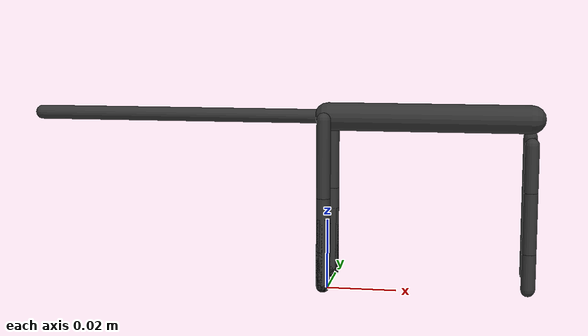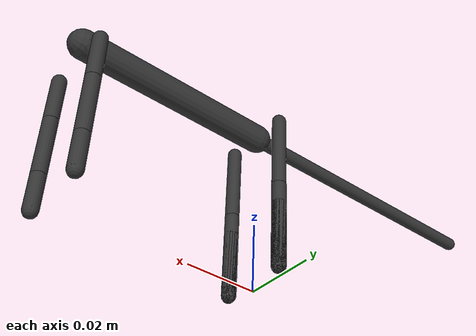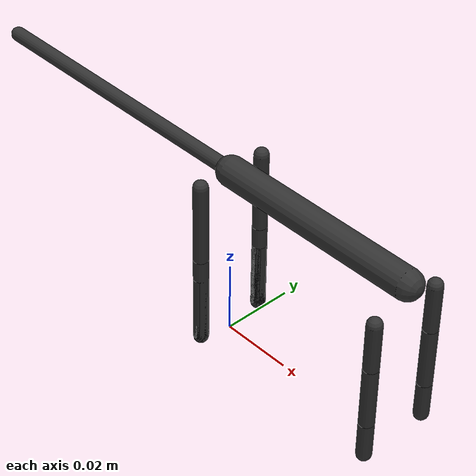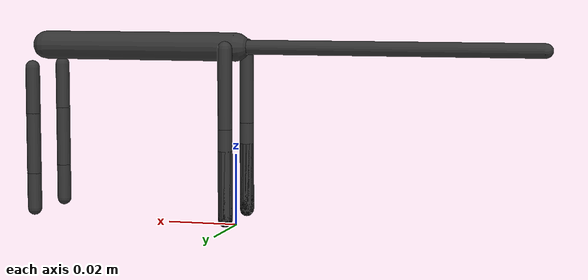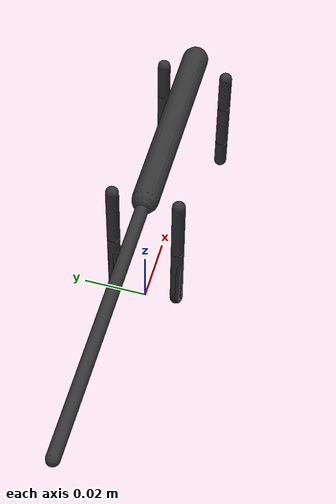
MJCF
<mujoco model="simple_mouse">
    <compiler angle="degree" inertiafromgeom="true"
    coordinate="local"
        />
    <option gravity="0 0 -9.81e-3" timestep="0.00125" iterations="100" />

    <custom>
      <numeric data="2000" name="constraint_stiffness"/>
      <numeric data="1000" name="constraint_limit_stiffness"/>
      <numeric data="0" name="constraint_ang_damping"/>
      <numeric data="0" name="constraint_vel_damping"/>
      <numeric data="0.5" name="joint_scale_pos"/>
      <numeric data="30" name="matrix_inv_iterations"/>
      <numeric data="0.2" name="joint_scale_ang"/>
      <numeric data="0.0" name="ang_damping"/>
      <numeric data="0." name="spring_mass_scale"/>
      <numeric data="0." name="spring_inertia_scale"/>
      <numeric data="15" name="solver_maxls"/>
      <numeric data="1" name="baumgarte_erp"/>
    </custom>

    <default>
        <joint armature="0.00001" damping="0.000001" limited="false"
          margin="10"
          solreflimit="0.2 1"
          solimplimit="0.0 0.8 0.1 0.5 2"
            />
      <geom contype="0" conaffinity="1" condim="3"
          density="0.0"
          friction="0 0.00 0"
          solref="0.2 1"
          solimp="0.0 0.8 10 0.5 2"
          rgba="0.2 0.2 0.2 1.0"/>
         <!-- d0 dw w m p-->
      <motor ctrllimited="true" ctrlrange="-1 1"/>
    </default>

    <size nstack="3000"/>

    <worldbody>
        <!-- Backbone -->
        <body name="mouse" pos="0 0 0.05">
            <geom name="spine" type="capsule" fromto="0 0 0 0.057 0 0" size="0.004" mass="0.005"/>
            <geom name="tail" type="capsule" fromto="0.0 0 0 -0.085 0 0" size="0.002" mass="0"/>

            <!-- Left Hindlimb -->
            <body pos="0 -0.01 0">
                <joint name="lhip" type="hinge" axis="0 1 0" range="-50 30"/>
                <geom type="capsule" fromto="0 0 0 0 0 -0.022" size="0.002"                 mass="0.003"/>
                <body pos="0 0 -0.022">
                    <joint name="lknee" type="hinge" axis="0 1 0" range="40 145"/>
                    <geom type="capsule" fromto="0 0 0 0 0 -0.025" size="0.002"             mass="0.002"/>
                    <body pos="0 0 -0.025">
                        <joint name="lankle" type="hinge" axis="0 1 0" range="-140 -40"/>
                        <geom type="capsule" fromto="0 0 0 0 0 0.019" size="0.002"          mass="0.002"/>
                    </body>
                </body>
            </body>

            <!-- Right Hindlimb -->
            <body pos="0 +0.01 0">
                <joint name="rhip" type="hinge" axis="0 1 0" range="-50 30"/>
                <geom type="capsule" fromto="0 0 0 0 0 -0.022" size="0.002"                 mass="0.003"/>
                <body pos="0 0 -0.022">
                    <joint name="rknee" type="hinge" axis="0 1 0" range="40 145"/>
                    <geom type="capsule" fromto="0 0 0 0 0 -0.025" size="0.002"             mass="0.002"/>
                    <body pos="0 0 -0.025">
                        <joint name="rankle" type="hinge" axis="0 1 0" range="-140 -40"/>
                        <geom type="capsule" fromto="0 0 0 0 0 0.019" size="0.002"          mass="0.002"/>
                    </body>
                </body>
            </body>

            <!-- Left Forelimb -->
            <body pos="0.057 -0.01 -0.006">
                <joint name="lshoulder" type="hinge" axis="0 1 0" range="-14 40"/>
                <geom type="capsule" fromto="0 0 0 0 0 -0.013" size="0.002"                 mass="0.003"/>
                <body pos="0 0 -0.013">
                    <joint name="lelbow" type="hinge" axis="0 1 0" range="-153 -60"/>
                    <geom type="capsule" fromto="0 0 0 0 0 -0.017" size="0.002"             mass="0.002"/>
                    <body pos="0 0 -0.017">
                        <joint name="lwrist" type="hinge" axis="0 1 0" range="-20 50"/>
                        <geom type="capsule" fromto="0 0 0 0 0 -0.010" size="0.002"         mass="0.002"/>
                    </body>
                </body>
            </body>

            <!-- Right Forelimb -->
            <body pos="0.057 +0.01 -0.006">
                <joint name="rshoulder" type="hinge" axis="0 1 0" range="-14 40"/>
                <geom type="capsule" fromto="0 0 0 0 0 -0.013" size="0.002"                 mass="0.003"/>
                <body pos="0 0 -0.013">
                    <joint name="relbow" type="hinge" axis="0 1 0" range="-153 -60"/>
                    <geom type="capsule" fromto="0 0 0 0 0 -0.017" size="0.002"             mass="0.002"/>
                    <body pos="0 0 -0.017">
                        <joint name="rwrist" type="hinge" axis="0 1 0" range="-50 50"/>
                        <geom type="capsule" fromto="0 0 0 0 0 -0.010" size="0.002"         mass="0.002"/>
                    </body>
                </body>
            </body>

        </body>
    </worldbody>

  <actuator>
    <motor ctrllimited="true" ctrlrange="-1.0 1.0" joint="lhip" gear="150"/>
    <motor ctrllimited="true" ctrlrange="-1.0 1.0" joint="lknee" gear="150"/>
    <motor ctrllimited="true" ctrlrange="-1.0 1.0" joint="lankle" gear="150"/>
    <motor ctrllimited="true" ctrlrange="-1.0 1.0" joint="rhip" gear="150"/>
    <motor ctrllimited="true" ctrlrange="-1.0 1.0" joint="rknee" gear="150"/>
    <motor ctrllimited="true" ctrlrange="-1.0 1.0" joint="rankle" gear="150"/>
    <motor ctrllimited="true" ctrlrange="-1.0 1.0" joint="lshoulder" gear="150"/>
    <motor ctrllimited="true" ctrlrange="-1.0 1.0" joint="lelbow" gear="150"/>
    <motor ctrllimited="true" ctrlrange="-1.0 1.0" joint="lwrist" gear="150"/>
    <motor ctrllimited="true" ctrlrange="-1.0 1.0" joint="rshoulder" gear="150"/>
    <motor ctrllimited="true" ctrlrange="-1.0 1.0" joint="relbow" gear="150"/>
    <motor ctrllimited="true" ctrlrange="-1.0 1.0" joint="rwrist" gear="150"/>
  </actuator>
</mujoco>
